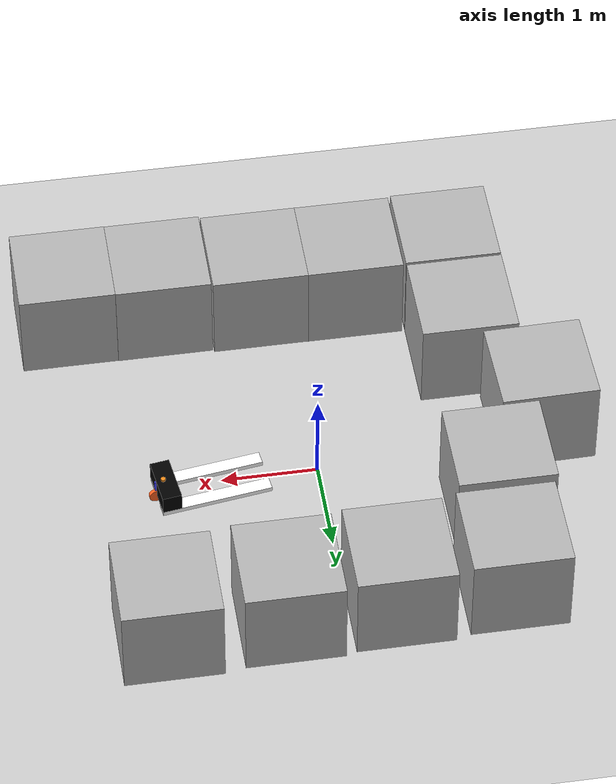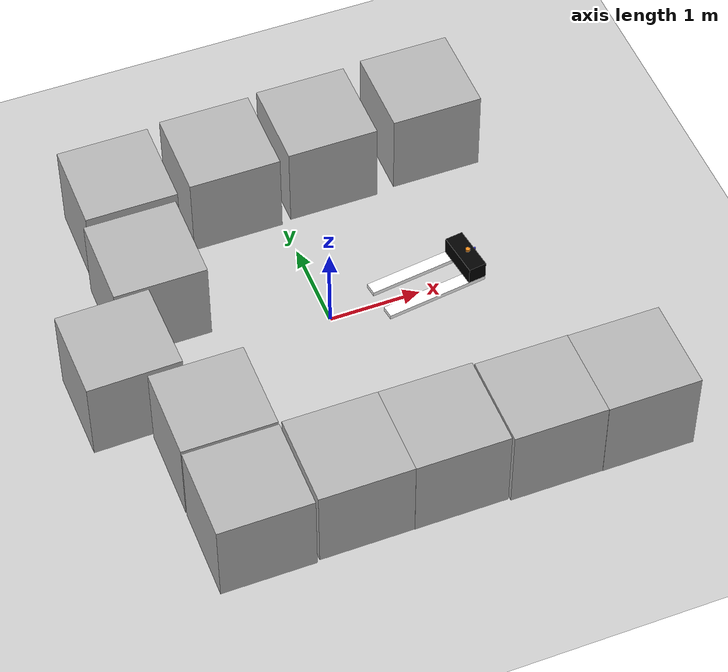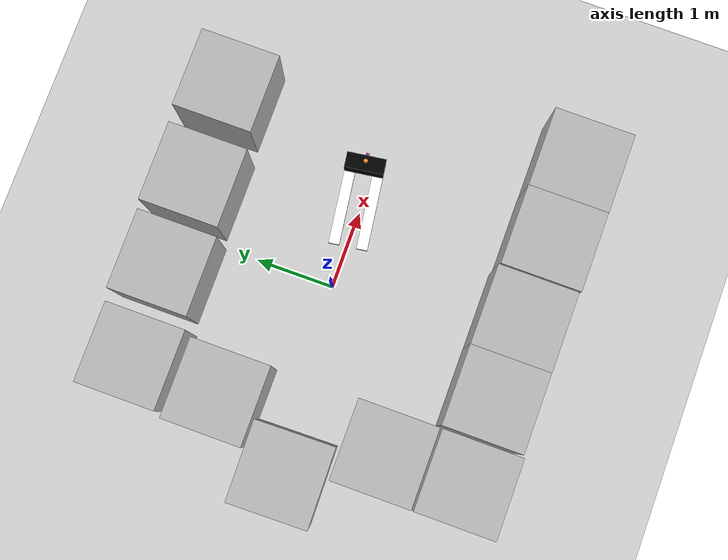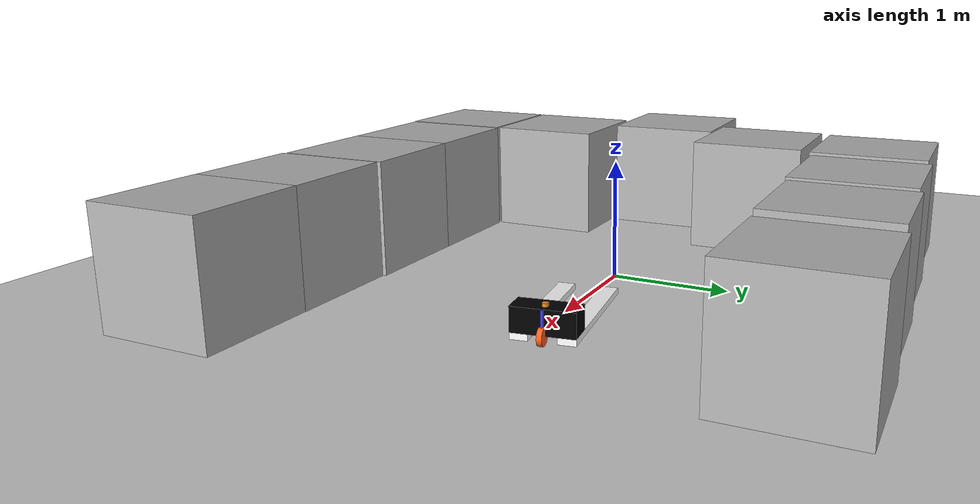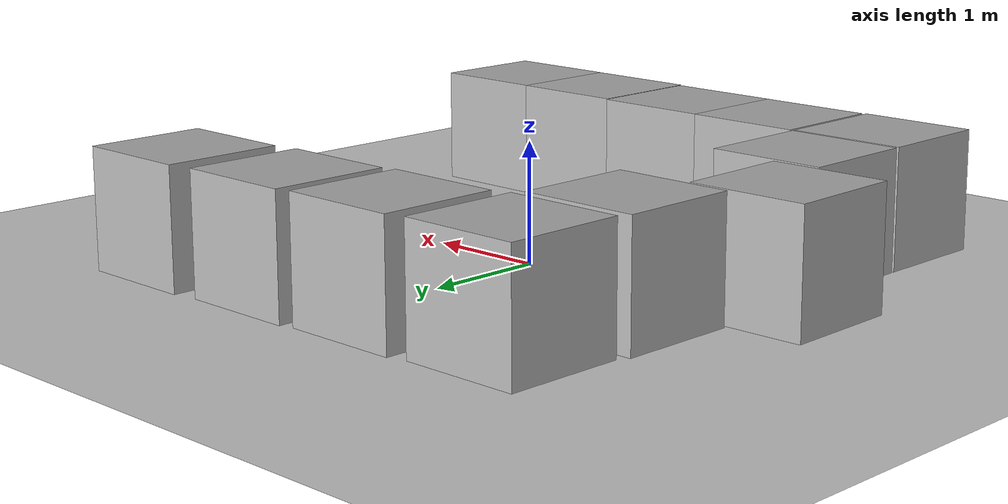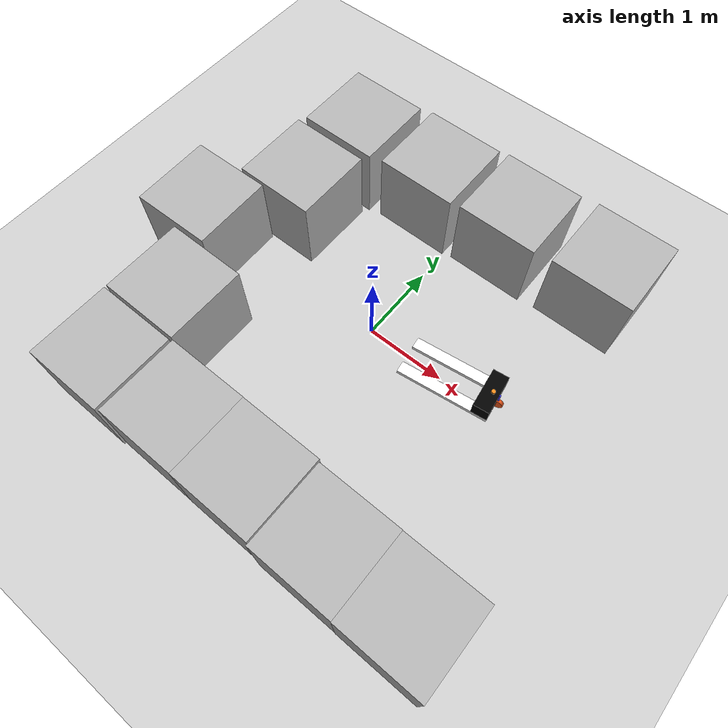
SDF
<sdf version='1.9'>
  <world name='empty'>
    <physics name='1ms' type='ignored'>
      <max_step_size>0.001</max_step_size>
      <real_time_factor>1</real_time_factor>
      <real_time_update_rate>1000</real_time_update_rate>
    </physics>
    <plugin name='gz::sim::systems::Physics' filename='gz-sim-physics-system'/>
    <plugin name='gz::sim::systems::UserCommands' filename='gz-sim-user-commands-system'/>
    <plugin name='gz::sim::systems::SceneBroadcaster' filename='gz-sim-scene-broadcaster-system'/>
    <plugin name='gz::sim::systems::Sensors' filename='gz-sim-sensors-system'>
      <render_engine>ogre2</render_engine>
    </plugin>
    <plugin name='gz::sim::systems::Contact' filename='gz-sim-contact-system'/>
    <gravity>0 0 -9.8</gravity>
    <magnetic_field>6e-06 2.3e-05 -4.2e-05</magnetic_field>
    <atmosphere type='adiabatic'/>
    <scene>
      <ambient>0.4 0.4 0.4 1</ambient>
      <background>0.7 0.7 0.7 1</background>
      <shadows>true</shadows>
    </scene>
    <model name='ground_plane'>
      <static>true</static>
      <link name='link'>
        <collision name='collision'>
          <geometry>
            <plane>
              <normal>0 0 1</normal>
              <size>100 100</size>
            </plane>
          </geometry>
          <surface>
            <friction>
              <ode/>
            </friction>
            <bounce/>
            <contact/>
          </surface>
        </collision>
        <visual name='visual'>
          <geometry>
            <plane>
              <normal>0 0 1</normal>
              <size>100 100</size>
            </plane>
          </geometry>
          <material>
            <ambient>0.8 0.8 0.8 1</ambient>
            <diffuse>0.8 0.8 0.8 1</diffuse>
            <specular>0.8 0.8 0.8 1</specular>
          </material>
        </visual>
        <pose>0 0 0 0 -0 0</pose>
        <inertial>
          <pose>0 0 0 0 -0 0</pose>
          <mass>1</mass>
          <inertia>
            <ixx>1</ixx>
            <ixy>0</ixy>
            <ixz>0</ixz>
            <iyy>1</iyy>
            <iyz>0</iyz>
            <izz>1</izz>
          </inertia>
        </inertial>
        <enable_wind>false</enable_wind>
      </link>
      <pose>0 0 0 0 -0 0</pose>
      <self_collide>false</self_collide>
    </model>
    <model name='agv'>
      <link name='base_link'>
        <inertial>
          <pose>0.492975 0 -0.00062 0 -0 0</pose>
          <mass>12.1</mass>
          <inertia>
            <ixx>0.43507899999999999</ixx>
            <ixy>0</ixy>
            <ixz>0.113678</ixz>
            <iyy>1.5306500000000001</iyy>
            <iyz>3.4694499999999997e-18</iyz>
            <izz>1.8595999999999999</izz>
          </inertia>
        </inertial>
        <collision name='base_link_collision'>
          <pose>0.1 0 0.1 0 0 0</pose>
          <geometry>
            <box>
              <size>0.2 0.5 0.2</size>
            </box>
          </geometry>
          <surface>
            <friction>
              <ode/>
            </friction>
            <bounce/>
            <contact/>
          </surface>
        </collision>
        <collision name='base_link_fixed_joint_lump__laser_collision_1'>
          <pose>0.075 0 0.2125 0 0 0</pose>
          <geometry>
            <cylinder>
              <length>0.025000000000000001</length>
              <radius>0.025000000000000001</radius>
            </cylinder>
          </geometry>
          <surface>
            <contact>
              <ode/>
            </contact>
            <friction>
              <ode/>
            </friction>
            <bounce/>
          </surface>
        </collision>
        <collision name='base_link_fixed_joint_lump__left_fork_collision_2'>
          <pose>0.575 0.18 -0.025 0 0 0</pose>
          <geometry>
            <box>
              <size>1.15 0.14 0.05</size>
            </box>
          </geometry>
          <surface>
            <friction>
              <ode/>
            </friction>
            <bounce/>
            <contact/>
          </surface>
        </collision>
        <collision name='base_link_fixed_joint_lump__right_fork_collision_3'>
          <pose>0.575 -0.18 -0.025 0 0 0</pose>
          <geometry>
            <box>
              <size>1.15 0.14 0.05</size>
            </box>
          </geometry>
          <surface>
            <friction>
              <ode/>
            </friction>
            <bounce/>
            <contact/>
          </surface>
        </collision>
        <visual name='base_link_visual'>
          <pose>0.1 0 0.1 0 0 0</pose>
          <geometry>
            <box>
              <size>0.2 0.5 0.2</size>
            </box>
          </geometry>
          <material>
            <diffuse>0 0 0 1</diffuse>
            <ambient>0 0 0 1</ambient>
          </material>
        </visual>
        <visual name='base_link_fixed_joint_lump__laser_visual_1'>
          <pose>0.075 0 0.2125 0 0 0</pose>
          <geometry>
            <cylinder>
              <length>0.025000000000000001</length>
              <radius>0.025000000000000001</radius>
            </cylinder>
          </geometry>
          <material>
            <script>
              <name>Gazebo/Orange</name>
              <uri>file://media/materials/scripts/gazebo.material</uri>
            </script>
            <diffuse>1 0.375 0.125 1</diffuse>
            <ambient>1 0.375 0.125 1</ambient>
          </material>
        </visual>
        <visual name='base_link_fixed_joint_lump__left_fork_visual_2'>
          <pose>0.575 0.18 -0.025 0 0 0</pose>
          <geometry>
            <box>
              <size>1.15 0.14 0.05</size>
            </box>
          </geometry>
          <material>
            <diffuse>1 1 1 1</diffuse>
            <ambient>1 1 1 1</ambient>
          </material>
        </visual>
        <visual name='base_link_fixed_joint_lump__right_fork_visual_3'>
          <pose>0.575 -0.18 -0.025 0 0 0</pose>
          <geometry>
            <box>
              <size>1.15 0.14 0.05</size>
            </box>
          </geometry>
          <material>
            <diffuse>1 1 1 1</diffuse>
            <ambient>1 1 1 1</ambient>
          </material>
        </visual>
        <sensor name='head_hokuyo_sensor' type='gpu_lidar'>
          <pose>0.15 0 0.425 0 -0 0</pose>
          <topic>scan</topic>
          <update_rate>10</update_rate>
          <enable_metrics>false</enable_metrics>
          <lidar>
            <scan>
              <horizontal>
                <samples>270</samples>
                <resolution>1</resolution>
                <min_angle>-2.0943000000000001</min_angle>
                <max_angle>2.0943000000000001</max_angle>
              </horizontal>
              <vertical>
                <samples>1</samples>
                <min_angle>0</min_angle>
                <max_angle>0</max_angle>
                <resolution>1</resolution>
              </vertical>
            </scan>
            <range>
              <min>0.10000000000000001</min>
              <max>20</max>
              <resolution>0</resolution>
            </range>
            <noise>
              <type>none</type>
              <mean>0</mean>
              <stddev>0</stddev>
            </noise>
            <visibility_mask>4294967295</visibility_mask>
          </lidar>
        </sensor>
        <pose>0 0 0 0 -0 0</pose>
        <enable_wind>false</enable_wind>
      </link>
      <joint name='fork_left_wheel_joint' type='revolute'>
        <pose>0 0 -0 0 -0 0</pose>
        <parent>base_link</parent>
        <child>fork_left_wheel</child>
        <axis>
          <xyz>0 0 1</xyz>
          <limit>
            <lower>-10000000000000000</lower>
            <upper>10000000000000000</upper>
            <effort>inf</effort>
            <velocity>inf</velocity>
            <stiffness>100000000</stiffness>
            <dissipation>1</dissipation>
          </limit>
          <dynamics>
            <spring_reference>0</spring_reference>
            <spring_stiffness>0</spring_stiffness>
            <damping>0</damping>
            <friction>0</friction>
          </dynamics>
        </axis>
      </joint>
      <link name='fork_left_wheel'>
        <pose>0.94 0.18 -0.05 -1.5708 0.696862 0</pose>
        <inertial>
          <pose>0 0 0 0 -0 0</pose>
          <mass>0.10000000000000001</mass>
          <inertia>
            <ixx>2.5833299999999999e-05</ixx>
            <ixy>0</ixy>
            <ixz>0</ixz>
            <iyy>2.5833299999999999e-05</iyy>
            <iyz>0</iyz>
            <izz>4.5000000000000003e-05</izz>
          </inertia>
        </inertial>
        <collision name='fork_left_wheel_collision'>
          <pose>0 0 0 0 0 0</pose>
          <geometry>
            <cylinder>
              <length>0.02</length>
              <radius>0.029999999999999999</radius>
            </cylinder>
          </geometry>
          <surface>
            <friction>
              <ode/>
            </friction>
            <bounce/>
            <contact/>
          </surface>
        </collision>
        <visual name='fork_left_wheel_visual'>
          <pose>0 0 0 0 0 0</pose>
          <geometry>
            <cylinder>
              <length>0.02</length>
              <radius>0.029999999999999999</radius>
            </cylinder>
          </geometry>
          <material>
            <diffuse>1 0.375 0.125 1</diffuse>
            <ambient>1 0.375 0.125 1</ambient>
          </material>
        </visual>
        <enable_wind>false</enable_wind>
      </link>
      <joint name='fork_right_wheel_joint' type='revolute'>
        <pose>0 0 0 0 -0 0</pose>
        <parent>base_link</parent>
        <child>fork_right_wheel</child>
        <axis>
          <xyz>0 0 -1</xyz>
          <limit>
            <lower>-10000000000000000</lower>
            <upper>10000000000000000</upper>
            <effort>inf</effort>
            <velocity>inf</velocity>
            <stiffness>100000000</stiffness>
            <dissipation>1</dissipation>
          </limit>
          <dynamics>
            <spring_reference>0</spring_reference>
            <spring_stiffness>0</spring_stiffness>
            <damping>0</damping>
            <friction>0</friction>
          </dynamics>
        </axis>
      </joint>
      <link name='fork_right_wheel'>
        <pose>0.94 -0.18 -0.05 1.5708 0.889555 3.14159</pose>
        <inertial>
          <pose>0 0 0 0 -0 0</pose>
          <mass>0.10000000000000001</mass>
          <inertia>
            <ixx>2.5833299999999999e-05</ixx>
            <ixy>0</ixy>
            <ixz>0</ixz>
            <iyy>2.5833299999999999e-05</iyy>
            <iyz>0</iyz>
            <izz>4.5000000000000003e-05</izz>
          </inertia>
        </inertial>
        <collision name='fork_right_wheel_collision'>
          <pose>0 0 0 0 0 0</pose>
          <geometry>
            <cylinder>
              <length>0.02</length>
              <radius>0.029999999999999999</radius>
            </cylinder>
          </geometry>
          <surface>
            <friction>
              <ode/>
            </friction>
            <bounce/>
            <contact/>
          </surface>
        </collision>
        <visual name='fork_right_wheel_visual'>
          <pose>0 0 0 0 0 0</pose>
          <geometry>
            <cylinder>
              <length>0.02</length>
              <radius>0.029999999999999999</radius>
            </cylinder>
          </geometry>
          <material>
            <diffuse>1 0.375 0.125 1</diffuse>
            <ambient>1 0.375 0.125 1</ambient>
          </material>
        </visual>
        <enable_wind>false</enable_wind>
      </link>
      <joint name='steering_cylinder_joint' type='revolute'>
        <pose>0 0 0 0 -0 0</pose>
        <parent>base_link</parent>
        <child>steering_cylinder</child>
        <axis>
          <xyz>0 0 -1</xyz>
          <limit>
            <lower>-1.5</lower>
            <upper>1.5</upper>
            <effort>10</effort>
            <velocity>1</velocity>
            <stiffness>100000000</stiffness>
            <dissipation>1</dissipation>
          </limit>
          <dynamics>
            <spring_reference>0</spring_reference>
            <spring_stiffness>0</spring_stiffness>
            <damping>0</damping>
            <friction>0</friction>
          </dynamics>
        </axis>
      </joint>
      <link name='steering_cylinder'>
        <pose>-0.01 -0 0.1 -0 0 1.5708</pose>
        <inertial>
          <pose>0 0 0 0 -0 0</pose>
          <mass>0.10000000000000001</mass>
          <inertia>
            <ixx>0.00033583300000000001</ixx>
            <ixy>0</ixy>
            <ixz>0</ixz>
            <iyy>0.00033583300000000001</iyy>
            <iyz>0</iyz>
            <izz>5.0000000000000004e-06</izz>
          </inertia>
        </inertial>
        <collision name='steering_cylinder_collision'>
          <pose>0 0 0 0 0 0</pose>
          <geometry>
            <cylinder>
              <length>0.20000000000000001</length>
              <radius>0.01</radius>
            </cylinder>
          </geometry>
          <surface>
            <friction>
              <ode/>
            </friction>
            <bounce/>
            <contact/>
          </surface>
        </collision>
        <visual name='steering_cylinder_visual'>
          <pose>0 0 0 0 0 0</pose>
          <geometry>
            <cylinder>
              <length>0.20000000000000001</length>
              <radius>0.01</radius>
            </cylinder>
          </geometry>
          <material>
            <diffuse>0.25 0.25 1 1</diffuse>
            <ambient>0.25 0.25 1 1</ambient>
          </material>
        </visual>
        <enable_wind>false</enable_wind>
      </link>
      <joint name='front_wheel_joint' type='revolute'>
        <pose>0 0 0 0 -0 0</pose>
        <parent>steering_cylinder</parent>
        <child>front_wheel</child>
        <axis>
          <xyz>0 0 1</xyz>
          <limit>
            <lower>-10000000000000000</lower>
            <upper>10000000000000000</upper>
            <effort>inf</effort>
            <velocity>inf</velocity>
            <stiffness>100000000</stiffness>
            <dissipation>1</dissipation>
          </limit>
          <dynamics>
            <spring_reference>0</spring_reference>
            <spring_stiffness>0</spring_stiffness>
            <damping>0</damping>
            <friction>0</friction>
          </dynamics>
        </axis>
      </joint>
      <link name='front_wheel'>
        <pose>-0.01 -0 0 -1.5708 -0.061121 -0</pose>
        <inertial>
          <pose>0 0 0 0 -0 0</pose>
          <mass>0.10000000000000001</mass>
          <inertia>
            <ixx>0.000135833</ixx>
            <ixy>0</ixy>
            <ixz>0</ixz>
            <iyy>0.000135833</iyy>
            <iyz>0</iyz>
            <izz>0.00024499999999999999</izz>
          </inertia>
        </inertial>
        <collision name='front_wheel_collision'>
          <pose>0 0 0 0 0 0</pose>
          <geometry>
            <cylinder>
              <length>0.040000000000000001</length>
              <radius>0.070000000000000007</radius>
            </cylinder>
          </geometry>
          <surface>
            <friction>
              <ode/>
            </friction>
            <bounce/>
            <contact/>
          </surface>
        </collision>
        <visual name='front_wheel_visual'>
          <pose>0 0 0 0 0 0</pose>
          <geometry>
            <cylinder>
              <length>0.040000000000000001</length>
              <radius>0.070000000000000007</radius>
            </cylinder>
          </geometry>
          <material>
            <diffuse>1 0.375 0.125 1</diffuse>
            <ambient>1 0.375 0.125 1</ambient>
          </material>
        </visual>
        <enable_wind>false</enable_wind>
      </link>
      <plugin name='gz_ros2_control::GazeboSimROS2ControlPlugin' filename='gz_ros2_control-system'>
        <parameters>/home/kalerobot/ros2_ws/install/agv_project/share/agv_project/config/controllers_tricycle.yaml</parameters>
      </plugin>
      <frame name='base_footprint_joint' attached_to='base_link'>
        <pose>0 0 0 0 -0 0</pose>
      </frame>
      <frame name='base_footprint' attached_to='base_footprint_joint'/>
      <frame name='laser_joint' attached_to='base_link'>
        <pose>0.075 0 0.2125 0 -0 0</pose>
      </frame>
      <frame name='laser' attached_to='laser_joint'/>
      <frame name='left_fork_joint' attached_to='base_link'>
        <pose>0 0.18 -0.05 0 -0 0</pose>
      </frame>
      <frame name='left_fork' attached_to='left_fork_joint'/>
      <frame name='right_fork_joint' attached_to='base_link'>
        <pose>0 -0.18 -0.05 0 -0 0</pose>
      </frame>
      <frame name='right_fork' attached_to='right_fork_joint'/>
      <pose>1.67874 0.145951 0.070105 -0 -0.010524 -3.00555</pose>
      <static>false</static>
      <self_collide>false</self_collide>
    </model>
    <model name='box'>
      <pose>1.80492 1.99194 0.5 0 0 -0</pose>
      <link name='box_link'>
        <inertial>
          <inertia>
            <ixx>0.16666</ixx>
            <ixy>0</ixy>
            <ixz>0</ixz>
            <iyy>0.16666</iyy>
            <iyz>0</iyz>
            <izz>0.16666</izz>
          </inertia>
          <mass>1</mass>
          <pose>0 0 0 0 -0 0</pose>
        </inertial>
        <collision name='box_collision'>
          <geometry>
            <box>
              <size>1 1 1</size>
            </box>
          </geometry>
          <surface>
            <friction>
              <ode/>
            </friction>
            <bounce/>
            <contact/>
          </surface>
        </collision>
        <visual name='box_visual'>
          <geometry>
            <box>
              <size>1 1 1</size>
            </box>
          </geometry>
          <material>
            <ambient>0.3 0.3 0.3 1</ambient>
            <diffuse>0.7 0.7 0.7 1</diffuse>
            <specular>1 1 1 1</specular>
          </material>
        </visual>
        <pose>0 0 0 0 -0 0</pose>
        <enable_wind>false</enable_wind>
      </link>
      <static>false</static>
      <self_collide>false</self_collide>
    </model>
    <model name='box_0'>
      <pose>0.596653 1.95376 0.5 0 0 0</pose>
      <link name='box_link'>
        <inertial>
          <inertia>
            <ixx>0.16666</ixx>
            <ixy>0</ixy>
            <ixz>0</ixz>
            <iyy>0.16666</iyy>
            <iyz>0</iyz>
            <izz>0.16666</izz>
          </inertia>
          <mass>1</mass>
          <pose>0 0 0 0 -0 0</pose>
        </inertial>
        <collision name='box_collision'>
          <geometry>
            <box>
              <size>1 1 1</size>
            </box>
          </geometry>
          <surface>
            <friction>
              <ode/>
            </friction>
            <bounce/>
            <contact/>
          </surface>
        </collision>
        <visual name='box_visual'>
          <geometry>
            <box>
              <size>1 1 1</size>
            </box>
          </geometry>
          <material>
            <ambient>0.3 0.3 0.3 1</ambient>
            <diffuse>0.7 0.7 0.7 1</diffuse>
            <specular>1 1 1 1</specular>
          </material>
        </visual>
        <pose>0 0 0 0 -0 0</pose>
        <enable_wind>false</enable_wind>
      </link>
      <static>false</static>
      <self_collide>false</self_collide>
    </model>
    <model name='box_1'>
      <pose>-0.513079 1.91947 0.5 0 0 -0</pose>
      <link name='box_link'>
        <inertial>
          <inertia>
            <ixx>0.16666</ixx>
            <ixy>0</ixy>
            <ixz>0</ixz>
            <iyy>0.16666</iyy>
            <iyz>0</iyz>
            <izz>0.16666</izz>
          </inertia>
          <mass>1</mass>
          <pose>0 0 0 0 -0 0</pose>
        </inertial>
        <collision name='box_collision'>
          <geometry>
            <box>
              <size>1 1 1</size>
            </box>
          </geometry>
          <surface>
            <friction>
              <ode/>
            </friction>
            <bounce/>
            <contact/>
          </surface>
        </collision>
        <visual name='box_visual'>
          <geometry>
            <box>
              <size>1 1 1</size>
            </box>
          </geometry>
          <material>
            <ambient>0.3 0.3 0.3 1</ambient>
            <diffuse>0.7 0.7 0.7 1</diffuse>
            <specular>1 1 1 1</specular>
          </material>
        </visual>
        <pose>0 0 0 0 -0 0</pose>
        <enable_wind>false</enable_wind>
      </link>
      <static>false</static>
      <self_collide>false</self_collide>
    </model>
    <model name='box_2'>
      <pose>-1.66275 1.87481 0.5 0 0 -0</pose>
      <link name='box_link'>
        <inertial>
          <inertia>
            <ixx>0.16666</ixx>
            <ixy>0</ixy>
            <ixz>0</ixz>
            <iyy>0.16666</iyy>
            <iyz>0</iyz>
            <izz>0.16666</izz>
          </inertia>
          <mass>1</mass>
          <pose>0 0 0 0 -0 0</pose>
        </inertial>
        <collision name='box_collision'>
          <geometry>
            <box>
              <size>1 1 1</size>
            </box>
          </geometry>
          <surface>
            <friction>
              <ode/>
            </friction>
            <bounce/>
            <contact/>
          </surface>
        </collision>
        <visual name='box_visual'>
          <geometry>
            <box>
              <size>1 1 1</size>
            </box>
          </geometry>
          <material>
            <ambient>0.3 0.3 0.3 1</ambient>
            <diffuse>0.7 0.7 0.7 1</diffuse>
            <specular>1 1 1 1</specular>
          </material>
        </visual>
        <pose>0 0 0 0 -0 0</pose>
        <enable_wind>false</enable_wind>
      </link>
      <static>false</static>
      <self_collide>false</self_collide>
    </model>
    <model name='box_3'>
      <pose>-1.71365 0.788314 0.5 -0 -0 0</pose>
      <link name='box_link'>
        <inertial>
          <inertia>
            <ixx>0.16666</ixx>
            <ixy>0</ixy>
            <ixz>0</ixz>
            <iyy>0.16666</iyy>
            <iyz>0</iyz>
            <izz>0.16666</izz>
          </inertia>
          <mass>1</mass>
          <pose>0 0 0 0 -0 0</pose>
        </inertial>
        <collision name='box_collision'>
          <geometry>
            <box>
              <size>1 1 1</size>
            </box>
          </geometry>
          <surface>
            <friction>
              <ode/>
            </friction>
            <bounce/>
            <contact/>
          </surface>
        </collision>
        <visual name='box_visual'>
          <geometry>
            <box>
              <size>1 1 1</size>
            </box>
          </geometry>
          <material>
            <ambient>0.3 0.3 0.3 1</ambient>
            <diffuse>0.7 0.7 0.7 1</diffuse>
            <specular>1 1 1 1</specular>
          </material>
        </visual>
        <pose>0 0 0 0 -0 0</pose>
        <enable_wind>false</enable_wind>
      </link>
      <static>false</static>
      <self_collide>false</self_collide>
    </model>
    <model name='box_4'>
      <pose>-2.34125 -0.249698 0.5 -0 -0 0.018052</pose>
      <link name='box_link'>
        <inertial>
          <inertia>
            <ixx>0.16666</ixx>
            <ixy>0</ixy>
            <ixz>0</ixz>
            <iyy>0.16666</iyy>
            <iyz>0</iyz>
            <izz>0.16666</izz>
          </inertia>
          <mass>1</mass>
          <pose>0 0 0 0 -0 0</pose>
        </inertial>
        <collision name='box_collision'>
          <geometry>
            <box>
              <size>1 1 1</size>
            </box>
          </geometry>
          <surface>
            <friction>
              <ode/>
            </friction>
            <bounce/>
            <contact/>
          </surface>
        </collision>
        <visual name='box_visual'>
          <geometry>
            <box>
              <size>1 1 1</size>
            </box>
          </geometry>
          <material>
            <ambient>0.3 0.3 0.3 1</ambient>
            <diffuse>0.7 0.7 0.7 1</diffuse>
            <specular>1 1 1 1</specular>
          </material>
        </visual>
        <pose>0 0 0 0 -0 0</pose>
        <enable_wind>false</enable_wind>
      </link>
      <static>false</static>
      <self_collide>false</self_collide>
    </model>
    <model name='box_5'>
      <pose>-1.71365 -1.291 0.5 0 0 -0</pose>
      <link name='box_link'>
        <inertial>
          <inertia>
            <ixx>0.16666</ixx>
            <ixy>0</ixy>
            <ixz>0</ixz>
            <iyy>0.16666</iyy>
            <iyz>0</iyz>
            <izz>0.16666</izz>
          </inertia>
          <mass>1</mass>
          <pose>0 0 0 0 -0 0</pose>
        </inertial>
        <collision name='box_collision'>
          <geometry>
            <box>
              <size>1 1 1</size>
            </box>
          </geometry>
          <surface>
            <friction>
              <ode/>
            </friction>
            <bounce/>
            <contact/>
          </surface>
        </collision>
        <visual name='box_visual'>
          <geometry>
            <box>
              <size>1 1 1</size>
            </box>
          </geometry>
          <material>
            <ambient>0.3 0.3 0.3 1</ambient>
            <diffuse>0.7 0.7 0.7 1</diffuse>
            <specular>1 1 1 1</specular>
          </material>
        </visual>
        <pose>0 0 0 0 -0 0</pose>
        <enable_wind>false</enable_wind>
      </link>
      <static>false</static>
      <self_collide>false</self_collide>
    </model>
    <model name='box_6'>
      <pose>-1.71365 -2.31924 0.5 0 0 -0</pose>
      <link name='box_link'>
        <inertial>
          <inertia>
            <ixx>0.16666</ixx>
            <ixy>0</ixy>
            <ixz>0</ixz>
            <iyy>0.16666</iyy>
            <iyz>0</iyz>
            <izz>0.16666</izz>
          </inertia>
          <mass>1</mass>
          <pose>0 0 0 0 -0 0</pose>
        </inertial>
        <collision name='box_collision'>
          <geometry>
            <box>
              <size>1 1 1</size>
            </box>
          </geometry>
          <surface>
            <friction>
              <ode/>
            </friction>
            <bounce/>
            <contact/>
          </surface>
        </collision>
        <visual name='box_visual'>
          <geometry>
            <box>
              <size>1 1 1</size>
            </box>
          </geometry>
          <material>
            <ambient>0.3 0.3 0.3 1</ambient>
            <diffuse>0.7 0.7 0.7 1</diffuse>
            <specular>1 1 1 1</specular>
          </material>
        </visual>
        <pose>0 0 0 0 -0 0</pose>
        <enable_wind>false</enable_wind>
      </link>
      <static>false</static>
      <self_collide>false</self_collide>
    </model>
    <model name='box_7'>
      <pose>-0.682948 -2.29867 0.5 0 -0 -1e-06</pose>
      <link name='box_link'>
        <inertial>
          <inertia>
            <ixx>0.16666</ixx>
            <ixy>0</ixy>
            <ixz>0</ixz>
            <iyy>0.16666</iyy>
            <iyz>0</iyz>
            <izz>0.16666</izz>
          </inertia>
          <mass>1</mass>
          <pose>0 0 0 0 -0 0</pose>
        </inertial>
        <collision name='box_collision'>
          <geometry>
            <box>
              <size>1 1 1</size>
            </box>
          </geometry>
          <surface>
            <friction>
              <ode/>
            </friction>
            <bounce/>
            <contact/>
          </surface>
        </collision>
        <visual name='box_visual'>
          <geometry>
            <box>
              <size>1 1 1</size>
            </box>
          </geometry>
          <material>
            <ambient>0.3 0.3 0.3 1</ambient>
            <diffuse>0.7 0.7 0.7 1</diffuse>
            <specular>1 1 1 1</specular>
          </material>
        </visual>
        <pose>0 0 0 0 -0 0</pose>
        <enable_wind>false</enable_wind>
      </link>
      <static>false</static>
      <self_collide>false</self_collide>
    </model>
    <model name='box_8'>
      <pose>0.317051 -2.30085 0.5 0 0 -1e-06</pose>
      <link name='box_link'>
        <inertial>
          <inertia>
            <ixx>0.16666</ixx>
            <ixy>0</ixy>
            <ixz>0</ixz>
            <iyy>0.16666</iyy>
            <iyz>0</iyz>
            <izz>0.16666</izz>
          </inertia>
          <mass>1</mass>
          <pose>0 0 0 0 -0 0</pose>
        </inertial>
        <collision name='box_collision'>
          <geometry>
            <box>
              <size>1 1 1</size>
            </box>
          </geometry>
          <surface>
            <friction>
              <ode/>
            </friction>
            <bounce/>
            <contact/>
          </surface>
        </collision>
        <visual name='box_visual'>
          <geometry>
            <box>
              <size>1 1 1</size>
            </box>
          </geometry>
          <material>
            <ambient>0.3 0.3 0.3 1</ambient>
            <diffuse>0.7 0.7 0.7 1</diffuse>
            <specular>1 1 1 1</specular>
          </material>
        </visual>
        <pose>0 0 0 0 -0 0</pose>
        <enable_wind>false</enable_wind>
      </link>
      <static>false</static>
      <self_collide>false</self_collide>
    </model>
    <model name='box_9'>
      <pose>1.33177 -2.32491 0.5 -0 -0 -1e-06</pose>
      <link name='box_link'>
        <inertial>
          <inertia>
            <ixx>0.16666</ixx>
            <ixy>0</ixy>
            <ixz>0</ixz>
            <iyy>0.16666</iyy>
            <iyz>0</iyz>
            <izz>0.16666</izz>
          </inertia>
          <mass>1</mass>
          <pose>0 0 0 0 -0 0</pose>
        </inertial>
        <collision name='box_collision'>
          <geometry>
            <box>
              <size>1 1 1</size>
            </box>
          </geometry>
          <surface>
            <friction>
              <ode/>
            </friction>
            <bounce/>
            <contact/>
          </surface>
        </collision>
        <visual name='box_visual'>
          <geometry>
            <box>
              <size>1 1 1</size>
            </box>
          </geometry>
          <material>
            <ambient>0.3 0.3 0.3 1</ambient>
            <diffuse>0.7 0.7 0.7 1</diffuse>
            <specular>1 1 1 1</specular>
          </material>
        </visual>
        <pose>0 0 0 0 -0 0</pose>
        <enable_wind>false</enable_wind>
      </link>
      <static>false</static>
      <self_collide>false</self_collide>
    </model>
    <model name='box_10'>
      <pose>2.33177 -2.32889 0.5 0 0 -1e-06</pose>
      <link name='box_link'>
        <inertial>
          <inertia>
            <ixx>0.16666</ixx>
            <ixy>0</ixy>
            <ixz>0</ixz>
            <iyy>0.16666</iyy>
            <iyz>0</iyz>
            <izz>0.16666</izz>
          </inertia>
          <mass>1</mass>
          <pose>0 0 0 0 -0 0</pose>
        </inertial>
        <collision name='box_collision'>
          <geometry>
            <box>
              <size>1 1 1</size>
            </box>
          </geometry>
          <surface>
            <friction>
              <ode/>
            </friction>
            <bounce/>
            <contact/>
          </surface>
        </collision>
        <visual name='box_visual'>
          <geometry>
            <box>
              <size>1 1 1</size>
            </box>
          </geometry>
          <material>
            <ambient>0.3 0.3 0.3 1</ambient>
            <diffuse>0.7 0.7 0.7 1</diffuse>
            <specular>1 1 1 1</specular>
          </material>
        </visual>
        <pose>0 0 0 0 -0 0</pose>
        <enable_wind>false</enable_wind>
      </link>
      <static>false</static>
      <self_collide>false</self_collide>
    </model>
    <light name='sun' type='directional'>
      <pose>0 0 10 0 -0 0</pose>
      <cast_shadows>true</cast_shadows>
      <intensity>1</intensity>
      <direction>-0.5 0.1 -0.9</direction>
      <diffuse>0.8 0.8 0.8 1</diffuse>
      <specular>0.2 0.2 0.2 1</specular>
      <attenuation>
        <range>1000</range>
        <linear>0.01</linear>
        <constant>0.90000000000000002</constant>
        <quadratic>0.001</quadratic>
      </attenuation>
      <spot>
        <inner_angle>0</inner_angle>
        <outer_angle>0</outer_angle>
        <falloff>0</falloff>
      </spot>
    </light>
  </world>
</sdf>
